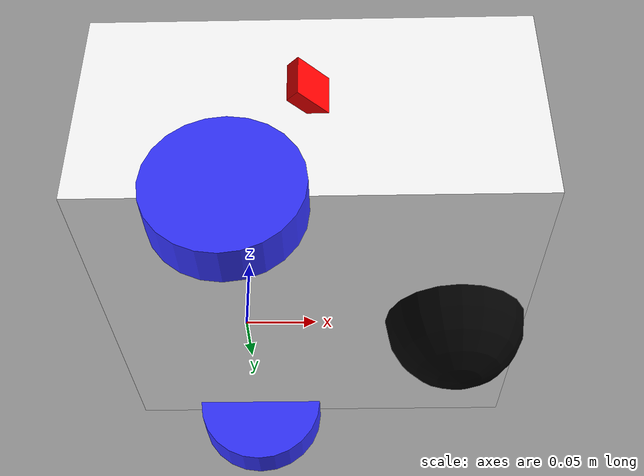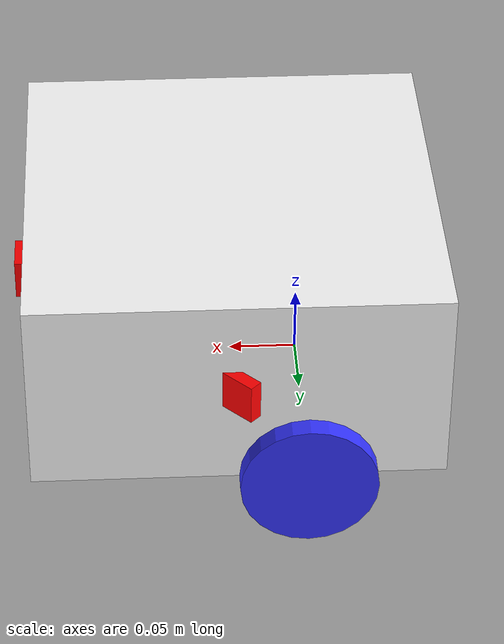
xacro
<?xml version="1.0"?>
<robot xmlns:xacro="http://www.ros.org/wiki/xacro" name="rtab_bot">

    <xacro:include filename="robot_core.xacro"/>
    <xacro:include filename = "robot_control.xacro"/>
    <xacro:include filename = "depth_camera.xacro"/>

</robot>

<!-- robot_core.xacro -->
<robot xmlns:xacro="http://www.ros.org/wiki/xacro">

    <xacro:include filename="inertial_macros.xacro"/>

    <material name="white">
        <color rgba="1.0 1.0 1.0 1.0"/>"inertial_macros.xacro"
    </material>

    <material name="orange">
        <color rgba="1.0 0.3 0.1 1.0"/>
    </material>

    <material name="blue">
        <color rgba="0.2 0.2 1.0 1.0"/>
    </material>

    <material name="black">
        <color rgba="0.0 0.0 0.0 1.0"/>
    </material>

    <material name="red">
        <color rgba="1.0 0.0 0.0 1.0"/>
    </material>

    <!-- Base link -->
    <link name="base_link">

    </link>

    <link name="base_footprint">

    </link>

    <joint name="base_footprint_joint" type="fixed">
        <parent link="base_link"/>
        <child link="base_footprint"/>
        <origin xyz="0 0 0.1" rpy="0 0 0"/>
    </joint>

    <!-- chassis Link -->
    <link name="chassis">
        <visual>
            <origin xyz="0.15 0.0 0.075"/>
            <geometry>
                <box size="0.3 0.3 0.15"/>
            </geometry>
            <material name="white"/>
        </visual>
        <collision>
            <origin xyz="0.15 0.0 0.075"/>
            <geometry>
                <box size="0.3 0.3 0.15"/>
            </geometry>
        </collision>
        <xacro:inertial_box mass="0.5" x="0.3" y="0.3" z="0.15">
            <origin xyz="0.15 0.0 0.075" rpy="0 0 0"/>
        </xacro:inertial_box>

    </link>

    <joint name="chassis_joint" type="fixed">
        <parent link="base_link"/>
        <child link="chassis"/>
        <origin xyz="-0.1 0.0 0.0"/>

    </joint>

    <gazebo reference="chassis">
        <material>Gazebo/White</material>
    </gazebo>

    <!-- Left Wheel link -->
    <link name="left_wheel">
        <visual>
            <geometry>
                <cylinder radius="0.05" length="0.03"/>
            </geometry>
            <material name="blue"/>
        </visual>
        <collision>
            <geometry>
                <cylinder radius="0.05" length="0.03"/>
            </geometry>
        </collision>
        <xacro:inertial_cylinder mass="0.1" length = "0.03" radius="0.05">
            <origin xyz="0.0 0.0 0.0" rpy="0.0 0.0 0.0"/>
        </xacro:inertial_cylinder>
    </link>

    <joint name="left_wheel_joint" type="continuous">
        <parent link="base_link"/>
        <child link="left_wheel"/>
        <origin xyz="0.0 0.15 0.0" rpy="-${pi/2} 0.0 0.0"/>
        <axis xyz="0.0 0.0 1.0"/>
    </joint>
    <gazebo reference="left_wheel">
        <material>Gazebo/Blue</material>
    </gazebo>

    <!-- Right Wheel link -->
    <link name="right_wheel">
        <visual>
            <geometry>
                <cylinder radius="0.05" length="0.03"/>
            </geometry>
            <material name="blue"/>
        </visual>
        <collision>
            <geometry>
                <cylinder radius="0.05" length="0.03"/>
            </geometry>
        </collision>
        <xacro:inertial_cylinder mass="0.1" length = "0.03" radius="0.05">
            <origin xyz="0.0 0.0 0.0" rpy="0.0 0.0 0.0"/>
        </xacro:inertial_cylinder>
    </link>

    <joint name="right_wheel_joint" type="continuous">
        <parent link="base_link"/>
        <child link="right_wheel"/>
        <origin xyz="0.0 -0.15 0.0" rpy="${pi/2} 0.0 0.0"/>
        <axis xyz="0.0 0.0 -1.0"/>
    </joint>

    <gazebo reference="right_wheel">
        <material>Gazebo/Blue</material>
    </gazebo>

    <!-- Caster Wheel -->
    <link name="caster_wheel">
        <visual>
            <geometry>
                <sphere radius="0.05"/>
            </geometry>
            <material name="black"/>
        </visual>
        <collision>
            <geometry>
                <sphere radius="0.05"/>
            </geometry>
        </collision>
        <xacro:inertial_sphere mass="0.1" radius="0.05">
            <origin xyz="0.0 0.0 0.0" rpy="0.0 0.0 0.0"/>
        </xacro:inertial_sphere>
    </link>

    <joint name="caster_wheel_joint" type="fixed">
        <parent link="chassis"/>
        <child link="caster_wheel"/>
        <origin xyz="0.25 0.0 0.0"/>
    </joint>

    <gazebo reference="caster_wheel">
        <material>Gazebo/Black</material>
        <mu1 value="0.001" />
        <mu2 value="0.001" />

    </gazebo>

</robot>

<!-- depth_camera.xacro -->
<robot xmlns:xacro="http://www.ros.org/wiki/xacro">

    <!-- Common properties -->
    <xacro:property name="M_PI" value="3.1415926535897931"/>

    <!-- ========== FRONT CAMERA ========== -->
    <joint name="front_camera_joint" type="fixed">
        <parent link="chassis"/>
        <child link="front_camera_link"/>
        <origin xyz="0.305 0 0.08" rpy="0 0 0"/>
    </joint>

    <link name="front_camera_link">
        <visual>
            <geometry>
                <box size="0.010 0.03 0.03"/>
            </geometry>
            <material name="red"/>
        </visual>
    </link>

    <joint name="front_camera_optical_joint" type="fixed">
        <parent link="front_camera_link"/>
        <child link="front_camera_link_optical"/>
        <origin xyz="0 0 0" rpy="${-pi/2} 0 ${-pi/2}"/>
    </joint>

    <link name="front_camera_link_optical"></link>

    <gazebo reference="front_camera_link">
        <material>Gazebo/Red</material>

        <sensor name="front_camera" type="depth">
            <pose> 0 0 0 0 0 0 </pose>
            <visualize>true</visualize>
            <update_rate>10</update_rate>
            <camera>
                <horizontal_fov>1.089</horizontal_fov>
                <image>
                    <format>B8G8R8</format>
                    <width>640</width>
                    <height>480</height>
                </image>
                <clip>
                    <near>0.05</near>
                    <far>8.0</far>
                </clip>
            </camera>
            <plugin name="front_camera_controller" filename="libgazebo_ros_camera.so">
                <frame_name>front_camera_link_optical</frame_name>
                <min_depth>0.1</min_depth>
                <max_depth>100.0</max_depth>
            </plugin>
        </sensor>
    </gazebo>

    <!-- ========== LEFT CAMERA ========== -->
    <joint name="left_camera_joint" type="fixed">
        <parent link="chassis"/>
        <child link="left_camera_link"/>
        <origin xyz="0.15 0.155 0.08" rpy="0 0 ${M_PI/4}"/>
    </joint>

    <link name="left_camera_link">
        <visual>
            <geometry>
                <box size="0.010 0.03 0.03"/>
            </geometry>
            <material name="red"/>
        </visual>
    </link>

    <joint name="left_camera_optical_joint" type="fixed">
        <parent link="left_camera_link"/>
        <child link="left_camera_optical_frame"/>
        <origin xyz="0 0 0" rpy="${-M_PI/2} 0 ${-M_PI/2}"/>
    </joint>

    <link name="left_camera_optical_frame"></link>

    <gazebo reference="left_camera_link">
        <material>Gazebo/Red</material>

        <sensor name="left_camera" type="depth">
            <pose> 0 0 0 0 0 0 </pose>
            <visualize>true</visualize>
            <update_rate>10</update_rate>
            <camera>
                <horizontal_fov>1.089</horizontal_fov>
                <image>
                    <format>B8G8R8</format>
                    <width>640</width>
                    <height>480</height>
                </image>
                <clip>
                    <near>0.05</near>
                    <far>8.0</far>
                </clip>
            </camera>
            <plugin name="left_camera_controller" filename="libgazebo_ros_camera.so">
                <frame_name>left_camera_optical_frame</frame_name>
                <min_depth>0.1</min_depth>
                <max_depth>100.0</max_depth>
            </plugin>
        </sensor>
    </gazebo>

    <!-- ========== RIGHT CAMERA ========== -->
    <joint name="right_camera_joint" type="fixed">
        <parent link="chassis"/>
        <child link="right_camera_link"/>
        <origin xyz="0.15 -0.155 0.08" rpy="0 0 ${-M_PI/4}"/>
    </joint>

    <link name="right_camera_link">
        <visual>
            <geometry>
                <box size="0.010 0.03 0.03"/>
            </geometry>
            <material name="red"/>
        </visual>
    </link>

    <joint name="right_camera_optical_joint" type="fixed">
        <parent link="right_camera_link"/>
        <child link="right_camera_optical_frame"/>
        <origin xyz="0 0 0" rpy="${-M_PI/2} 0 ${-M_PI/2}"/>
    </joint>

    <link name="right_camera_optical_frame"></link>

    <gazebo reference="right_camera_link">
        <material>Gazebo/Red</material>
        <sensor name="right_camera" type="depth">
            <pose>0 0 0 0 0 0</pose>
            <visualize>true</visualize>
            <update_rate>10</update_rate>
            <camera>
                <horizontal_fov>1.089</horizontal_fov>
                <image>
                    <format>R8G8B8</format>
                    <width>640</width>
                    <height>480</height>
                </image>
                <clip>
                    <near>0.05</near>
                    <far>8.0</far>
                </clip>
            </camera>
            <plugin name="right_depth_camera_controller" filename="libgazebo_ros_camera.so">
                <frame_name>right_camera_optical_frame</frame_name>
                <min_depth>0.1</min_depth>
                <max_depth>100.0</max_depth>
            </plugin>
        </sensor>
    </gazebo>
</robot>
